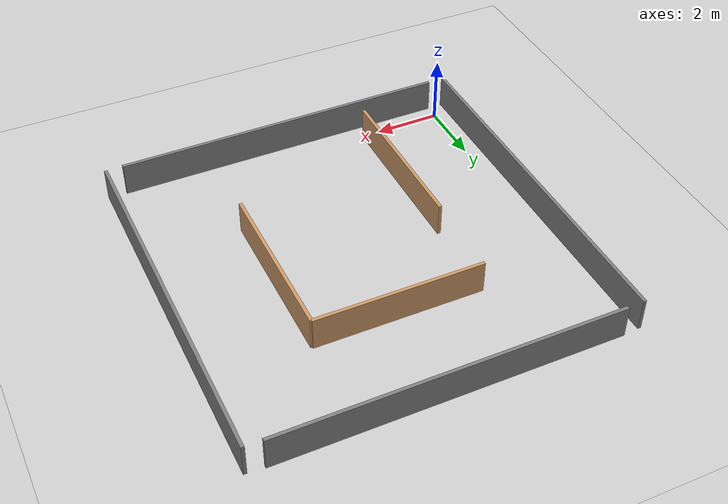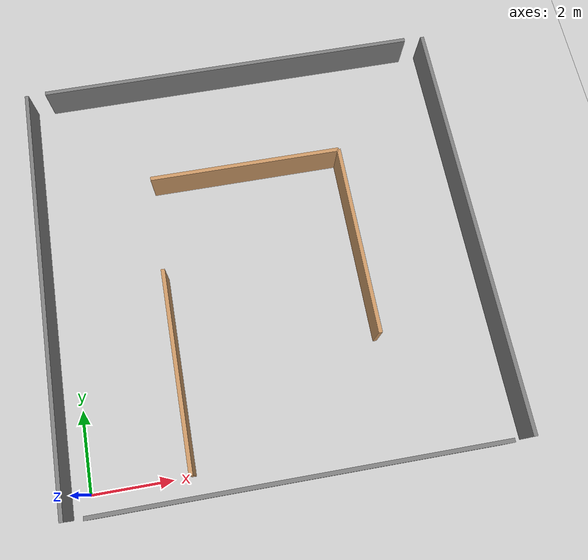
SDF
<?xml version="1.0" ?>
<sdf version="1.8">
  <world name="maze_world">

    <physics name="1ms" type="ignored">
      <max_step_size>0.001</max_step_size>
      <real_time_factor>1.0</real_time_factor>
    </physics>

    <plugin filename="gz-sim-physics-system" name="gz::sim::systems::Physics"/>
    <plugin filename="gz-sim-user-commands-system" name="gz::sim::systems::UserCommands"/>
    <plugin filename="gz-sim-scene-broadcaster-system" name="gz::sim::systems::SceneBroadcaster"/>

    <plugin filename="gz-sim-sensors-system" name="gz::sim::systems::Sensors">
      <render_engine>ogre2</render_engine>
    </plugin>

    <plugin filename="gz-sim-imu-system" name="gz::sim::systems::Imu"/>

    <light type="directional" name="sun">
      <cast_shadows>true</cast_shadows>
      <pose>0 0 10 0 0 0</pose>
      <diffuse>0.8 0.8 0.8 1</diffuse>
      <specular>0.2 0.2 0.2 1</specular>
      <attenuation>
        <range>1000</range>
        <constant>0.9</constant>
        <linear>0.01</linear>
        <quadratic>0.001</quadratic>
      </attenuation>
      <direction>-0.5 0.1 -0.9</direction>
    </light>

    <model name="ground_plane">
      <static>true</static>
      <link name="link">
        <collision name="collision">
          <geometry>
            <plane>
              <normal>0 0 1</normal>
              <size>100 100</size>
            </plane>
          </geometry>
        </collision>
        <visual name="visual">
          <geometry>
            <plane>
              <normal>0 0 1</normal>
              <size>100 100</size>
            </plane>
          </geometry>
          <material>
            <ambient>0.8 0.8 0.8 1</ambient>
            <diffuse>0.8 0.8 0.8 1</diffuse>
            <specular>0.8 0.8 0.8 1</specular>
          </material>
        </visual>
      </link>
    </model>

    <model name="wall_1">
      <pose>5 -0.5 0.5 0 0 0</pose>
      <static>true</static>
      <link name="link">
        <collision name="collision">
          <geometry><box><size>10 0.1 1</size></box></geometry>
        </collision>
        <visual name="visual">
          <geometry><box><size>10 0.1 1</size></box></geometry>
          <material>
            <ambient>0.5 0.5 0.5 1</ambient>
            <diffuse>0.5 0.5 0.5 1</diffuse>
          </material>
        </visual>
      </link>
    </model>

    <model name="wall_2">
      <pose>5 10.5 0.5 0 0 0</pose>
      <static>true</static>
      <link name="link">
        <collision name="collision">
          <geometry><box><size>10 0.1 1</size></box></geometry>
        </collision>
        <visual name="visual">
          <geometry><box><size>10 0.1 1</size></box></geometry>
          <material>
            <ambient>0.5 0.5 0.5 1</ambient>
            <diffuse>0.5 0.5 0.5 1</diffuse>
          </material>
        </visual>
      </link>
    </model>

    <model name="wall_3">
      <pose>-0.5 5 0.5 0 0 1.5708</pose>
      <static>true</static>
      <link name="link">
        <collision name="collision">
          <geometry><box><size>11 0.1 1</size></box></geometry>
        </collision>
        <visual name="visual">
          <geometry><box><size>11 0.1 1</size></box></geometry>
          <material>
            <ambient>0.5 0.5 0.5 1</ambient>
            <diffuse>0.5 0.5 0.5 1</diffuse>
          </material>
        </visual>
      </link>
    </model>

    <model name="wall_4">
      <pose>10.5 5 0.5 0 0 1.5708</pose>
      <static>true</static>
      <link name="link">
        <collision name="collision">
          <geometry><box><size>11 0.1 1</size></box></geometry>
        </collision>
        <visual name="visual">
          <geometry><box><size>11 0.1 1</size></box></geometry>
          <material>
            <ambient>0.5 0.5 0.5 1</ambient>
            <diffuse>0.5 0.5 0.5 1</diffuse>
          </material>
        </visual>
      </link>
    </model>

    <model name="inner_wall_1">
      <pose>2.5 2.5 0.5 0 0 1.5708</pose>
      <static>true</static>
      <link name="link">
        <collision name="collision">
          <geometry><box><size>5 0.1 1</size></box></geometry>
        </collision>
        <visual name="visual">
          <geometry><box><size>5 0.1 1</size></box></geometry>
          <material>
            <ambient>0.8 0.6 0.4 1</ambient>
            <diffuse>0.8 0.6 0.4 1</diffuse>
          </material>
        </visual>
      </link>
    </model>

    <model name="inner_wall_2">
      <pose>5 7.5 0.5 0 0 0</pose>
      <static>true</static>
      <link name="link">
        <collision name="collision">
          <geometry><box><size>5 0.1 1</size></box></geometry>
        </collision>
        <visual name="visual">
          <geometry><box><size>5 0.1 1</size></box></geometry>
          <material>
            <ambient>0.8 0.6 0.4 1</ambient>
            <diffuse>0.8 0.6 0.4 1</diffuse>
          </material>
        </visual>
      </link>
    </model>

    <model name="inner_wall_3">
      <pose>7.5 5 0.5 0 0 1.5708</pose>
      <static>true</static>
      <link name="link">
        <collision name="collision">
          <geometry><box><size>5 0.1 1</size></box></geometry>
        </collision>
        <visual name="visual">
          <geometry><box><size>5 0.1 1</size></box></geometry>
          <material>
            <ambient>0.8 0.6 0.4 1</ambient>
            <diffuse>0.8 0.6 0.4 1</diffuse>
          </material>
        </visual>
      </link>
    </model>

  </world>
</sdf>
